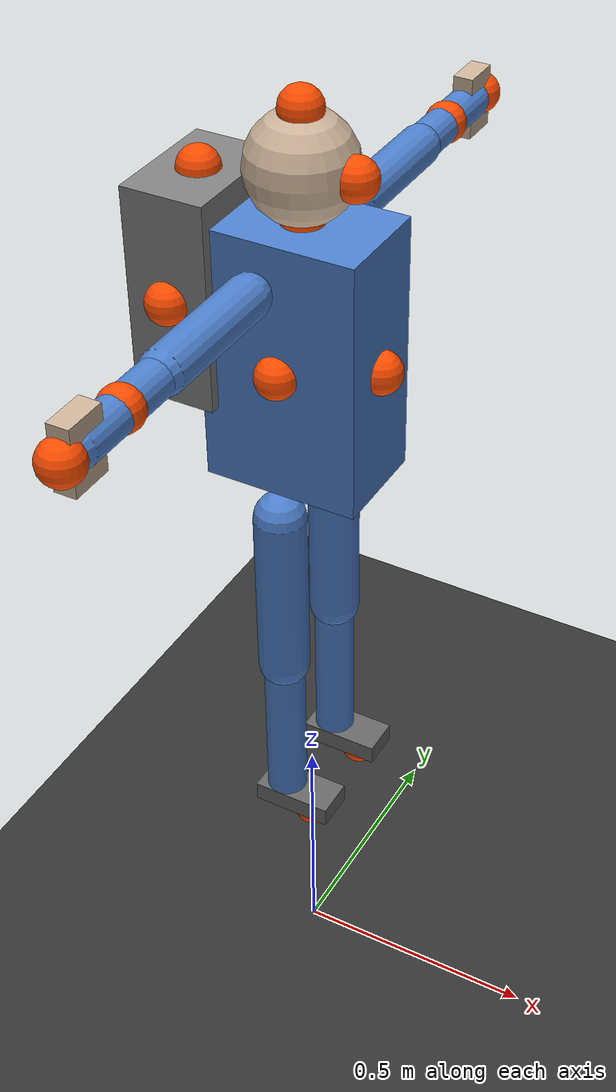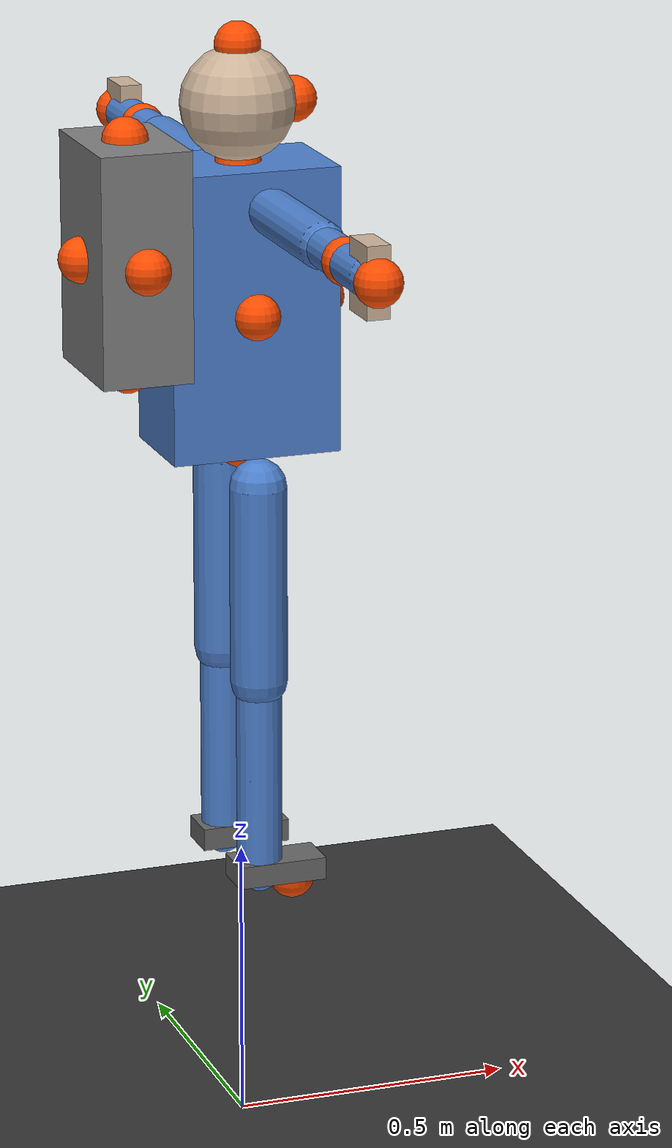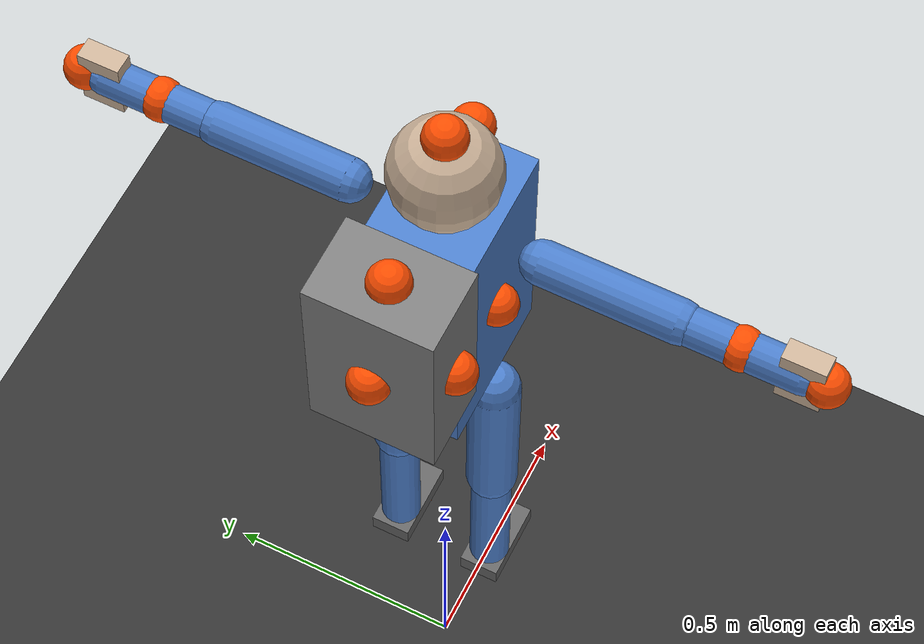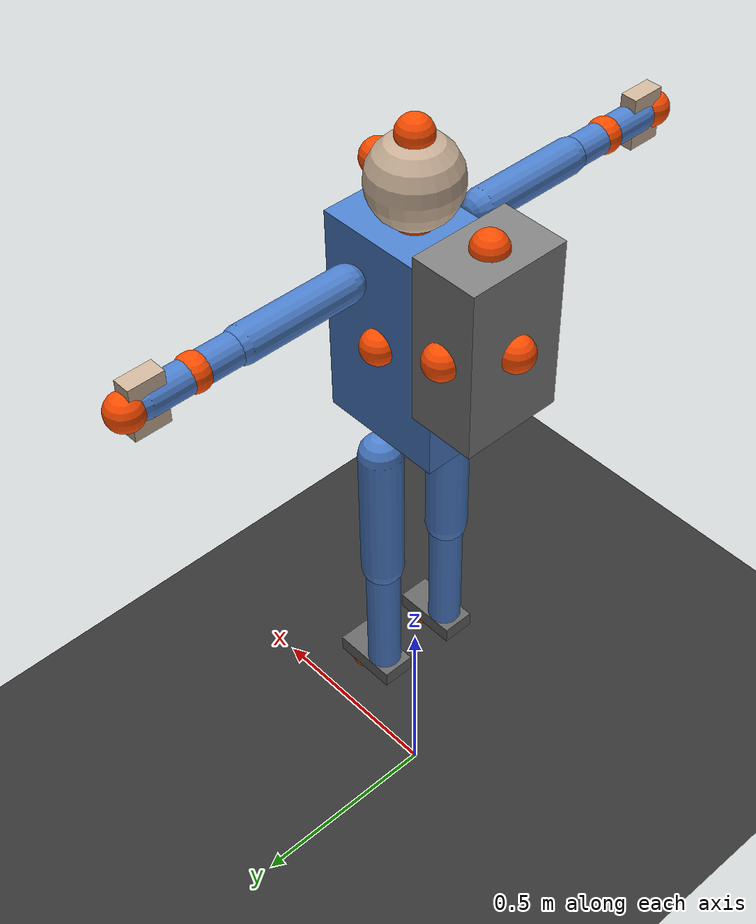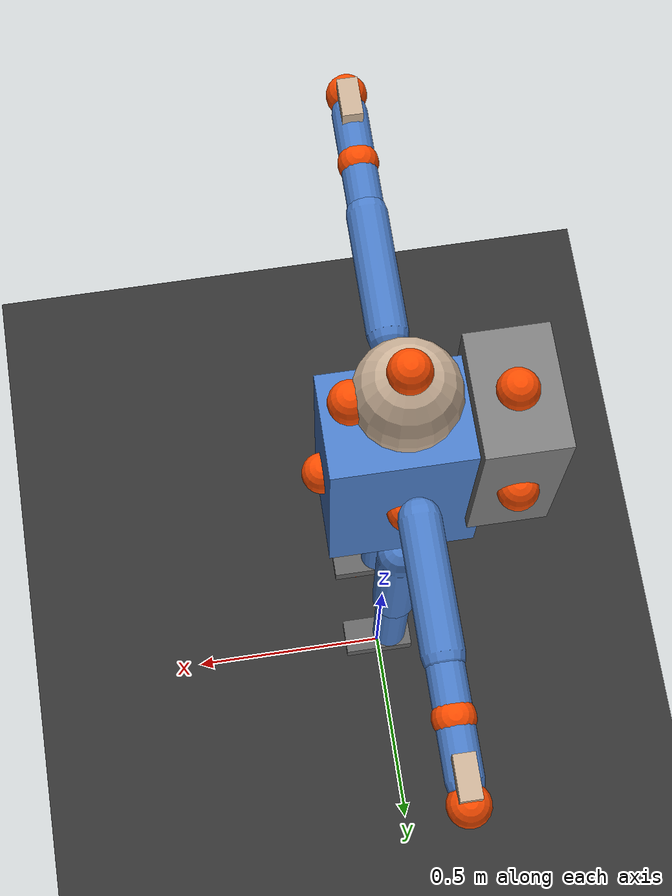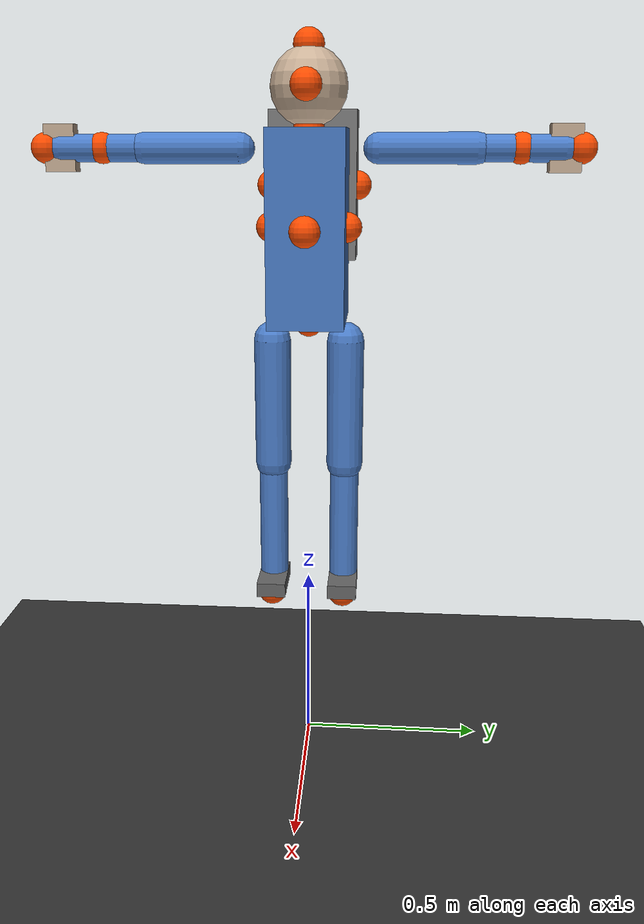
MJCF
<mujoco model="stick_figure">
  <!-- Zero gravity for space simulation -->
  <option gravity="0 0 0" timestep="0.01" integrator="RK4"/>

  <!-- Visual settings -->
  <visual>
    <headlight ambient="0.4 0.4 0.4" diffuse="0.8 0.8 0.8"/>
  </visual>

  <!-- Default joint/geom properties -->
  <default>
    <joint damping="2.0" armature="0.1"/>
    <geom contype="1" conaffinity="1" friction="1 0.5 0.5"/>
    <site type="sphere" size="0.04" rgba="1 0.3 0 1"/>
  </default>

  <worldbody>
    <!-- Ground plane for reference (visual only) -->
    <geom name="floor" type="plane" size="10 10 0.1" rgba="0.2 0.2 0.2 0.3" contype="0" conaffinity="0"/>

    <!-- Main torso - root of the kinematic chain -->
    <body name="torso" pos="0 0 1.5">
      <freejoint name="root"/>
      <geom name="torso_geom" type="box" size="0.15 0.1 0.25" rgba="0.3 0.5 0.8 1" density="1000"/>

      <!-- Thruster sites on torso -->
      <site name="torso_front" pos="0.15 0 0"/>
      <site name="torso_back" pos="-0.15 0 0"/>
      <site name="torso_left" pos="0 0.1 0"/>
      <site name="torso_right" pos="0 -0.1 0"/>
      <site name="torso_top" pos="0 0 0.25"/>
      <site name="torso_bottom" pos="0 0 -0.25"/>

      <!-- ========== HEAD ========== -->
      <body name="head" pos="0 0 0.35">
        <joint name="neck_pitch" type="hinge" axis="0 1 0" range="-30 30" damping="1.0"/>
        <joint name="neck_yaw" type="hinge" axis="0 0 1" range="-45 45" damping="1.0"/>
        <geom name="head_geom" type="sphere" size="0.1" rgba="0.8 0.7 0.6 1" density="800"/>
        <site name="head_top" pos="0 0 0.1"/>
        <site name="head_front" pos="0.1 0 0"/>
      </body>

      <!-- ========== LEFT ARM ========== -->
      <body name="left_upper_arm" pos="0 0.18 0.2">
        <joint name="left_shoulder_pitch" type="hinge" axis="1 0 0" range="-180 180"/>
        <joint name="left_shoulder_yaw" type="hinge" axis="0 0 1" range="-90 90"/>
        <geom name="left_upper_arm_geom" type="capsule" fromto="0 0 0 0 0.25 0" size="0.04" rgba="0.3 0.5 0.8 1" density="800"/>
        <site name="left_upper_arm_site" pos="0 0.125 0"/>

        <body name="left_lower_arm" pos="0 0.25 0">
          <joint name="left_elbow" type="hinge" axis="1 0 0" range="-150 0"/>
          <geom name="left_lower_arm_geom" type="capsule" fromto="0 0 0 0 0.22 0" size="0.035" rgba="0.3 0.5 0.8 1" density="800"/>
          <site name="left_lower_arm_site" pos="0 0.11 0"/>

          <body name="left_hand" pos="0 0.22 0">
            <joint name="left_wrist_pitch" type="hinge" axis="0 1 0" range="-60 60" damping="0.5"/>
            <joint name="left_wrist_yaw" type="hinge" axis="0 0 1" range="-30 30" damping="0.5"/>
            <geom name="left_hand_geom" type="box" size="0.02 0.04 0.06" rgba="0.8 0.7 0.6 1" density="600"/>
            <site name="left_hand_site" pos="0 0.04 0"/>
          </body>
        </body>
      </body>

      <!-- ========== RIGHT ARM (mirror of left) ========== -->
      <body name="right_upper_arm" pos="0 -0.18 0.2">
        <joint name="right_shoulder_pitch" type="hinge" axis="1 0 0" range="-180 180"/>
        <joint name="right_shoulder_yaw" type="hinge" axis="0 0 1" range="-90 90"/>
        <geom name="right_upper_arm_geom" type="capsule" fromto="0 0 0 0 -0.25 0" size="0.04" rgba="0.3 0.5 0.8 1" density="800"/>
        <site name="right_upper_arm_site" pos="0 -0.125 0"/>

        <body name="right_lower_arm" pos="0 -0.25 0">
          <joint name="right_elbow" type="hinge" axis="1 0 0" range="-150 0"/>
          <geom name="right_lower_arm_geom" type="capsule" fromto="0 0 0 0 -0.22 0" size="0.035" rgba="0.3 0.5 0.8 1" density="800"/>
          <site name="right_lower_arm_site" pos="0 -0.11 0"/>

          <body name="right_hand" pos="0 -0.22 0">
            <joint name="right_wrist_pitch" type="hinge" axis="0 1 0" range="-60 60" damping="0.5"/>
            <joint name="right_wrist_yaw" type="hinge" axis="0 0 1" range="-30 30" damping="0.5"/>
            <geom name="right_hand_geom" type="box" size="0.02 0.04 0.06" rgba="0.8 0.7 0.6 1" density="600"/>
            <site name="right_hand_site" pos="0 -0.04 0"/>
          </body>
        </body>
      </body>

      <!-- ========== LEFT LEG ========== -->
      <body name="left_upper_leg" pos="0 0.1 -0.3">
        <joint name="left_hip_pitch" type="hinge" axis="0 1 0" range="-120 60"/>
        <joint name="left_hip_roll" type="hinge" axis="1 0 0" range="-45 45"/>
        <geom name="left_upper_leg_geom" type="capsule" fromto="0 0 0 0 0 -0.35" size="0.05" rgba="0.3 0.5 0.8 1" density="900"/>
        <site name="left_upper_leg_site" pos="0 0 -0.175"/>

        <body name="left_lower_leg" pos="0 0 -0.35">
          <joint name="left_knee" type="hinge" axis="0 1 0" range="0 150"/>
          <geom name="left_lower_leg_geom" type="capsule" fromto="0 0 0 0 0 -0.35" size="0.04" rgba="0.3 0.5 0.8 1" density="900"/>
          <site name="left_lower_leg_site" pos="0 0 -0.175"/>

          <body name="left_foot" pos="0 0 -0.35">
            <joint name="left_ankle" type="hinge" axis="0 1 0" range="-45 45"/>
            <geom name="left_foot_geom" type="box" size="0.08 0.04 0.02" pos="0.03 0 0" rgba="0.4 0.4 0.4 1" density="800"/>
            <site name="left_foot_site" pos="0.06 0 -0.02"/>
          </body>
        </body>
      </body>

      <!-- ========== RIGHT LEG (mirror of left) ========== -->
      <body name="right_upper_leg" pos="0 -0.1 -0.3">
        <joint name="right_hip_pitch" type="hinge" axis="0 1 0" range="-120 60"/>
        <joint name="right_hip_roll" type="hinge" axis="1 0 0" range="-45 45"/>
        <geom name="right_upper_leg_geom" type="capsule" fromto="0 0 0 0 0 -0.35" size="0.05" rgba="0.3 0.5 0.8 1" density="900"/>
        <site name="right_upper_leg_site" pos="0 0 -0.175"/>

        <body name="right_lower_leg" pos="0 0 -0.35">
          <joint name="right_knee" type="hinge" axis="0 1 0" range="0 150"/>
          <geom name="right_lower_leg_geom" type="capsule" fromto="0 0 0 0 0 -0.35" size="0.04" rgba="0.3 0.5 0.8 1" density="900"/>
          <site name="right_lower_leg_site" pos="0 0 -0.175"/>

          <body name="right_foot" pos="0 0 -0.35">
            <joint name="right_ankle" type="hinge" axis="0 1 0" range="-45 45"/>
            <geom name="right_foot_geom" type="box" size="0.08 0.04 0.02" pos="0.03 0 0" rgba="0.4 0.4 0.4 1" density="800"/>
            <site name="right_foot_site" pos="0.06 0 -0.02"/>
          </body>
        </body>
      </body>

      <!-- ========== BACKPACK (for main thrusters) ========== -->
      <body name="backpack" pos="-0.2 0 0.1">
        <geom name="backpack_geom" type="box" size="0.08 0.12 0.2" rgba="0.5 0.5 0.5 1" density="500"/>
        <site name="backpack_top" pos="0 0 0.2"/>
        <site name="backpack_bottom" pos="0 0 -0.2"/>
        <site name="backpack_left" pos="0 0.12 0"/>
        <site name="backpack_right" pos="0 -0.12 0"/>
        <site name="backpack_rear" pos="-0.08 0 0"/>
      </body>

    </body>

    <!-- Cameras for viewing -->
    <camera name="fixed" pos="3 3 2" xyaxes="-1 1 0 0 0 1"/>
    <camera name="front" pos="3 0 1.5" xyaxes="0 1 0 0 0 1"/>
    <camera name="side" pos="0 3 1.5" xyaxes="-1 0 0 0 0 1"/>
    <camera name="top" pos="0 0 5" xyaxes="0 1 0 -1 0 0"/>
  </worldbody>

  <!-- Actuators will be added dynamically for thrusters -->
  <actuator>
    <!-- Joint actuators for limb control (AMBAC) -->
    <motor name="left_shoulder_pitch_act" joint="left_shoulder_pitch" ctrlrange="-50 50" ctrllimited="true"/>
    <motor name="left_shoulder_yaw_act" joint="left_shoulder_yaw" ctrlrange="-50 50" ctrllimited="true"/>
    <motor name="left_elbow_act" joint="left_elbow" ctrlrange="-50 50" ctrllimited="true"/>

    <motor name="right_shoulder_pitch_act" joint="right_shoulder_pitch" ctrlrange="-50 50" ctrllimited="true"/>
    <motor name="right_shoulder_yaw_act" joint="right_shoulder_yaw" ctrlrange="-50 50" ctrllimited="true"/>
    <motor name="right_elbow_act" joint="right_elbow" ctrlrange="-50 50" ctrllimited="true"/>

    <motor name="left_hip_pitch_act" joint="left_hip_pitch" ctrlrange="-100 100" ctrllimited="true"/>
    <motor name="left_hip_roll_act" joint="left_hip_roll" ctrlrange="-50 50" ctrllimited="true"/>
    <motor name="left_knee_act" joint="left_knee" ctrlrange="-100 100" ctrllimited="true"/>
    <motor name="left_ankle_act" joint="left_ankle" ctrlrange="-50 50" ctrllimited="true"/>

    <motor name="right_hip_pitch_act" joint="right_hip_pitch" ctrlrange="-100 100" ctrllimited="true"/>
    <motor name="right_hip_roll_act" joint="right_hip_roll" ctrlrange="-50 50" ctrllimited="true"/>
    <motor name="right_knee_act" joint="right_knee" ctrlrange="-100 100" ctrllimited="true"/>
    <motor name="right_ankle_act" joint="right_ankle" ctrlrange="-50 50" ctrllimited="true"/>
  </actuator>
</mujoco>
